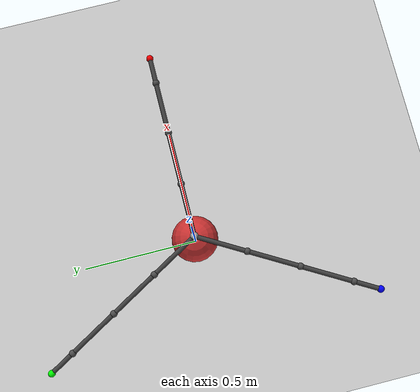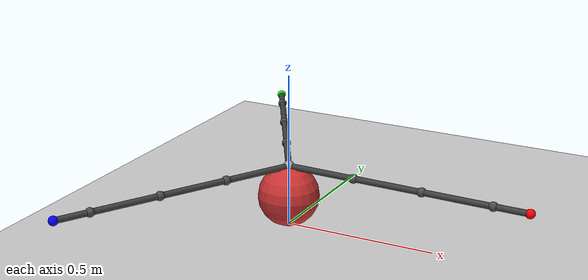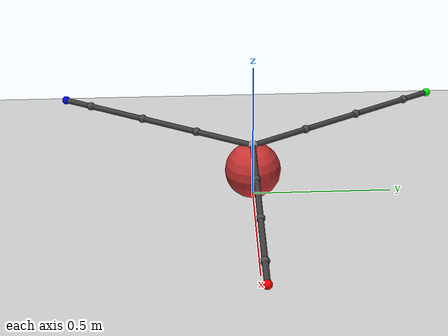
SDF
<sdf version="1.9">
 <world name="multi_uav_slung_load_r0p80">
  <physics name="1ms" type="ode">
   <max_step_size>0.001</max_step_size>
   <real_time_factor>1.0</real_time_factor>
  </physics>
  <plugin filename="gz-sim-physics-system" name="gz::sim::systems::Physics"/>
  <plugin filename="gz-sim-user-commands-system" name="gz::sim::systems::UserCommands"/>
  <plugin filename="gz-sim-scene-broadcaster-system" name="gz::sim::systems::SceneBroadcaster"/>
  <plugin filename="gz-sim-sensors-system" name="gz::sim::systems::Sensors">
   <render_engine>ogre2</render_engine>
  </plugin>
  <plugin filename="gz-sim-imu-system" name="gz::sim::systems::Imu"/>
  <plugin filename="gz-sim-magnetometer-system" name="gz::sim::systems::Magnetometer"/>
  <plugin filename="gz-sim-air-pressure-system" name="gz::sim::systems::AirPressure"/>
  <plugin filename="gz-sim-navsat-system" name="gz::sim::systems::NavSat"/>
  <spherical_coordinates>
   <surface_model>EARTH_WGS84</surface_model>
   <world_frame_orientation>ENU</world_frame_orientation>
   <latitude_deg>47.397742</latitude_deg>
   <longitude_deg>8.545594</longitude_deg>
   <elevation>488.0</elevation>
   <heading_deg>0</heading_deg>
  </spherical_coordinates>
  <light type="directional" name="sun">
   <pose>0 0 10 0 0 0</pose>
   <diffuse>0.8 0.8 0.8 1</diffuse>
   <specular>0.2 0.2 0.2 1</specular>
   <attenuation>
    <range>1000</range>
    <constant>0.9</constant>
    <linear>0.01</linear>
    <quadratic>0.001</quadratic>
   </attenuation>
   <direction>-0.5 0.1 -0.9</direction>
  </light>
  <model name="ground_plane">
   <static>true</static>
   <link name="link">
    <collision name="collision">
     <geometry><plane><normal>0 0 1</normal><size>200 200</size></plane></geometry>
    </collision>
    <visual name="visual">
     <geometry><plane><normal>0 0 1</normal><size>200 200</size></plane></geometry>
     <material>
      <ambient>0.8 0.8 0.8 1</ambient>
      <diffuse>0.8 0.8 0.8 1</diffuse>
      <specular>0.8 0.8 0.8 1</specular>
     </material>
    </visual>
   </link>
  </model>
  <model name="slung_load">
   <link name="payload_link">
    <pose>0 0 0.1 0 0 0</pose>
    <inertial>
     <mass>0.1</mass>
     <inertia><ixx>0.0040</ixx><ixy>0</ixy><ixz>0</ixz><iyy>0.0040</iyy><iyz>0</iyz><izz>0.0040</izz></inertia>
    </inertial>
    <visual name="body_visual">
     <geometry><sphere><radius>0.100</radius></sphere></geometry>
     <material><ambient>0.8 0.2 0.2 1</ambient><diffuse>0.8 0.2 0.2 1</diffuse></material>
    </visual>
    <collision name="body_collision"><geometry><sphere><radius>0.100</radius></sphere></geometry></collision>
   </link>
   <joint name="payload_to_c0_end" type="ball"><parent>payload_link</parent><child>c0_end</child></joint>
   <link name="c0_end">
    <pose>0.0000 0.0000 0.2000 0.0000 0.0000 0.0000</pose>
    <inertial>
     <mass>0.0001</mass>
     <inertia>
      <ixx>6.48e-07</ixx>
      <ixy>0</ixy>
      <ixz>0</ixz>
      <iyy>6.48e-07</iyy>
      <iyz>0</iyz>
      <izz>6.48e-07</izz>
     </inertia>
    </inertial>
    <visual name="v">
     <geometry><sphere><radius>0.018</radius></sphere></geometry>
     <material><ambient>0.6 0.6 0.6 1</ambient><diffuse>0.6 0.6 0.6 1</diffuse></material>
    </visual>
    <collision name="col"><geometry><sphere><radius>0.018</radius></sphere></geometry></collision>
   </link>
   <joint name="c0_end_to_s3c" type="revolute">
    <parent>c0_end</parent>
    <child>c0_s3c</child>
    <axis>
     <xyz>-0.0000 1.0000 0</xyz>
     <limit><lower>-3.14</lower><upper>3.14</upper></limit>
     <dynamics><damping>0.001</damping></dynamics>
    </axis>
   </joint>
   <link name="c0_s3c">
    <pose>0.0000 0.0000 0.2000 0.0000 0.0000 0.0000</pose>
    <inertial>
     <pose>0.1143 0.0000 -0.0015 0.0000 1.5835 0.0000</pose>
     <mass>0.0001</mass>
     <inertia>
      <ixx>6.57e-05</ixx>
      <ixy>0</ixy>
      <ixz>0</ixz>
      <iyy>6.57e-05</iyy>
      <iyz>0</iyz>
      <izz>7.50e-07</izz>
     </inertia>
    </inertial>
    <visual name="v">
     <pose>0.1143 0.0000 -0.0015 0.0000 1.5835 0.0000</pose>
     <geometry><cylinder><radius>0.01</radius><length>0.2286</length></cylinder></geometry>
     <material><ambient>0.25 0.25 0.25 1</ambient><diffuse>0.25 0.25 0.25 1</diffuse></material>
    </visual>
    <collision name="col">
     <pose>0.1143 0.0000 -0.0015 0.0000 1.5835 0.0000</pose>
     <geometry><cylinder><radius>0.01</radius><length>0.2286</length></cylinder></geometry>
    </collision>
   </link>
   <joint name="c0_s3c_to_s3s" type="revolute">
    <parent>c0_s3c</parent>
    <child>c0_s3s</child>
    <axis>
     <xyz>1.0000 0.0000 0</xyz>
     <limit><lower>-3.14</lower><upper>3.14</upper></limit>
     <dynamics><damping>0.001</damping></dynamics>
    </axis>
   </joint>
   <link name="c0_s3s">
    <pose>0.2286 0.0000 0.1971 0.0000 0.0000 0.0000</pose>
    <inertial>
     <mass>0.0001</mass>
     <inertia>
      <ixx>4.50e-07</ixx>
      <ixy>0</ixy>
      <ixz>0</ixz>
      <iyy>4.50e-07</iyy>
      <iyz>0</iyz>
      <izz>4.50e-07</izz>
     </inertia>
    </inertial>
    <visual name="v">
     <geometry><sphere><radius>0.015</radius></sphere></geometry>
     <material><ambient>0.3 0.3 0.3 1</ambient><diffuse>0.3 0.3 0.3 1</diffuse></material>
    </visual>
    <collision name="col"><geometry><sphere><radius>0.015</radius></sphere></geometry></collision>
   </link>
   <joint name="c0_s3s_to_s2c" type="revolute">
    <parent>c0_s3s</parent>
    <child>c0_s2c</child>
    <axis>
     <xyz>-0.0000 1.0000 0</xyz>
     <limit><lower>-3.14</lower><upper>3.14</upper></limit>
     <dynamics><damping>0.001</damping></dynamics>
    </axis>
   </joint>
   <link name="c0_s2c">
    <pose>0.2286 0.0000 0.1971 0.0000 0.0000 0.0000</pose>
    <inertial>
     <pose>0.1143 0.0000 -0.0014 0.0000 1.5830 0.0000</pose>
     <mass>0.0001</mass>
     <inertia>
      <ixx>6.57e-05</ixx>
      <ixy>0</ixy>
      <ixz>0</ixz>
      <iyy>6.57e-05</iyy>
      <iyz>0</iyz>
      <izz>7.50e-07</izz>
     </inertia>
    </inertial>
    <visual name="v">
     <pose>0.1143 0.0000 -0.0014 0.0000 1.5830 0.0000</pose>
     <geometry><cylinder><radius>0.01</radius><length>0.2285</length></cylinder></geometry>
     <material><ambient>0.25 0.25 0.25 1</ambient><diffuse>0.25 0.25 0.25 1</diffuse></material>
    </visual>
    <collision name="col">
     <pose>0.1143 0.0000 -0.0014 0.0000 1.5830 0.0000</pose>
     <geometry><cylinder><radius>0.01</radius><length>0.2285</length></cylinder></geometry>
    </collision>
   </link>
   <joint name="c0_s2c_to_s2s" type="revolute">
    <parent>c0_s2c</parent>
    <child>c0_s2s</child>
    <axis>
     <xyz>1.0000 0.0000 0</xyz>
     <limit><lower>-3.14</lower><upper>3.14</upper></limit>
     <dynamics><damping>0.001</damping></dynamics>
    </axis>
   </joint>
   <link name="c0_s2s">
    <pose>0.4571 0.0000 0.1943 0.0000 0.0000 0.0000</pose>
    <inertial>
     <mass>0.0001</mass>
     <inertia>
      <ixx>4.50e-07</ixx>
      <ixy>0</ixy>
      <ixz>0</ixz>
      <iyy>4.50e-07</iyy>
      <iyz>0</iyz>
      <izz>4.50e-07</izz>
     </inertia>
    </inertial>
    <visual name="v">
     <geometry><sphere><radius>0.015</radius></sphere></geometry>
     <material><ambient>0.3 0.3 0.3 1</ambient><diffuse>0.3 0.3 0.3 1</diffuse></material>
    </visual>
    <collision name="col"><geometry><sphere><radius>0.015</radius></sphere></geometry></collision>
   </link>
   <joint name="c0_s2s_to_s1c" type="revolute">
    <parent>c0_s2s</parent>
    <child>c0_s1c</child>
    <axis>
     <xyz>-0.0000 1.0000 0</xyz>
     <limit><lower>-3.14</lower><upper>3.14</upper></limit>
     <dynamics><damping>0.001</damping></dynamics>
    </axis>
   </joint>
   <link name="c0_s1c">
    <pose>0.4571 0.0000 0.1943 0.0000 0.0000 0.0000</pose>
    <inertial>
     <pose>0.1143 0.0000 -0.0015 0.0000 1.5835 0.0000</pose>
     <mass>0.0001</mass>
     <inertia>
      <ixx>6.57e-05</ixx>
      <ixy>0</ixy>
      <ixz>0</ixz>
      <iyy>6.57e-05</iyy>
      <iyz>0</iyz>
      <izz>7.50e-07</izz>
     </inertia>
    </inertial>
    <visual name="v">
     <pose>0.1143 0.0000 -0.0015 0.0000 1.5835 0.0000</pose>
     <geometry><cylinder><radius>0.01</radius><length>0.2286</length></cylinder></geometry>
     <material><ambient>0.25 0.25 0.25 1</ambient><diffuse>0.25 0.25 0.25 1</diffuse></material>
    </visual>
    <collision name="col">
     <pose>0.1143 0.0000 -0.0015 0.0000 1.5835 0.0000</pose>
     <geometry><cylinder><radius>0.01</radius><length>0.2286</length></cylinder></geometry>
    </collision>
   </link>
   <joint name="c0_s1c_to_s1s" type="revolute">
    <parent>c0_s1c</parent>
    <child>c0_s1s</child>
    <axis>
     <xyz>1.0000 0.0000 0</xyz>
     <limit><lower>-3.14</lower><upper>3.14</upper></limit>
     <dynamics><damping>0.001</damping></dynamics>
    </axis>
   </joint>
   <link name="c0_s1s">
    <pose>0.6857 0.0000 0.1914 0.0000 0.0000 0.0000</pose>
    <inertial>
     <mass>0.0001</mass>
     <inertia>
      <ixx>4.50e-07</ixx>
      <ixy>0</ixy>
      <ixz>0</ixz>
      <iyy>4.50e-07</iyy>
      <iyz>0</iyz>
      <izz>4.50e-07</izz>
     </inertia>
    </inertial>
    <visual name="v">
     <geometry><sphere><radius>0.015</radius></sphere></geometry>
     <material><ambient>0.3 0.3 0.3 1</ambient><diffuse>0.3 0.3 0.3 1</diffuse></material>
    </visual>
    <collision name="col"><geometry><sphere><radius>0.015</radius></sphere></geometry></collision>
    <visual name="rod_to_hook">
     <pose>0.0572 0.0000 -0.0007 0.0000 1.5830 0.0000</pose>
     <geometry><cylinder><radius>0.01</radius><length>0.1143</length></cylinder></geometry>
     <material><ambient>0.25 0.25 0.25 1</ambient><diffuse>0.25 0.25 0.25 1</diffuse></material>
    </visual>
    <collision name="rod_to_hook_col">
     <pose>0.0572 0.0000 -0.0007 0.0000 1.5830 0.0000</pose>
     <geometry><cylinder><radius>0.01</radius><length>0.1143</length></cylinder></geometry>
    </collision>
   </link>
   <joint name="c0_s1s_to_hook" type="revolute">
    <parent>c0_s1s</parent>
    <child>c0_hook</child>
    <axis>
     <xyz>-0.0000 1.0000 0</xyz>
     <limit><lower>-3.14</lower><upper>3.14</upper></limit>
     <dynamics><damping>0.001</damping></dynamics>
    </axis>
   </joint>
   <link name="c0_hook">
    <pose>0.8000 0.0000 0.1900 0.0000 0.0000 0.0000</pose>
    <inertial>
     <mass>0.0001</mass>
     <inertia>
      <ixx>4.50e-07</ixx>
      <ixy>0</ixy>
      <ixz>0</ixz>
      <iyy>4.50e-07</iyy>
      <iyz>0</iyz>
      <izz>4.50e-07</izz>
     </inertia>
    </inertial>
    <visual name="v">
     <geometry><sphere><radius>0.015</radius></sphere></geometry>
     <material><ambient>1 0 0 1</ambient><diffuse>1 0 0 1</diffuse></material>
    </visual>
    <collision name="col"><geometry><sphere><radius>0.015</radius></sphere></geometry></collision>
   </link>
   <joint name="payload_to_c1_end" type="ball"><parent>payload_link</parent><child>c1_end</child></joint>
   <link name="c1_end">
    <pose>0.0000 0.0000 0.2000 0.0000 0.0000 0.0000</pose>
    <inertial>
     <mass>0.0001</mass>
     <inertia>
      <ixx>6.48e-07</ixx>
      <ixy>0</ixy>
      <ixz>0</ixz>
      <iyy>6.48e-07</iyy>
      <iyz>0</iyz>
      <izz>6.48e-07</izz>
     </inertia>
    </inertial>
    <visual name="v">
     <geometry><sphere><radius>0.018</radius></sphere></geometry>
     <material><ambient>0.6 0.6 0.6 1</ambient><diffuse>0.6 0.6 0.6 1</diffuse></material>
    </visual>
    <collision name="col"><geometry><sphere><radius>0.018</radius></sphere></geometry></collision>
   </link>
   <joint name="c1_end_to_s3c" type="revolute">
    <parent>c1_end</parent>
    <child>c1_s3c</child>
    <axis>
     <xyz>-0.8660 -0.5000 0</xyz>
     <limit><lower>-3.14</lower><upper>3.14</upper></limit>
     <dynamics><damping>0.001</damping></dynamics>
    </axis>
   </joint>
   <link name="c1_s3c">
    <pose>0.0000 0.0000 0.2000 0.0000 0.0000 0.0000</pose>
    <inertial>
     <pose>-0.0571 0.0989 -0.0015 0.0000 1.5835 2.0946</pose>
     <mass>0.0001</mass>
     <inertia>
      <ixx>6.57e-05</ixx>
      <ixy>0</ixy>
      <ixz>0</ixz>
      <iyy>6.57e-05</iyy>
      <iyz>0</iyz>
      <izz>7.50e-07</izz>
     </inertia>
    </inertial>
    <visual name="v">
     <pose>-0.0571 0.0989 -0.0015 0.0000 1.5835 2.0946</pose>
     <geometry><cylinder><radius>0.01</radius><length>0.2286</length></cylinder></geometry>
     <material><ambient>0.25 0.25 0.25 1</ambient><diffuse>0.25 0.25 0.25 1</diffuse></material>
    </visual>
    <collision name="col">
     <pose>-0.0571 0.0989 -0.0015 0.0000 1.5835 2.0946</pose>
     <geometry><cylinder><radius>0.01</radius><length>0.2286</length></cylinder></geometry>
    </collision>
   </link>
   <joint name="c1_s3c_to_s3s" type="revolute">
    <parent>c1_s3c</parent>
    <child>c1_s3s</child>
    <axis>
     <xyz>-0.5000 0.8660 0</xyz>
     <limit><lower>-3.14</lower><upper>3.14</upper></limit>
     <dynamics><damping>0.001</damping></dynamics>
    </axis>
   </joint>
   <link name="c1_s3s">
    <pose>-0.1143 0.1979 0.1971 0.0000 0.0000 0.0000</pose>
    <inertial>
     <mass>0.0001</mass>
     <inertia>
      <ixx>4.50e-07</ixx>
      <ixy>0</ixy>
      <ixz>0</ixz>
      <iyy>4.50e-07</iyy>
      <iyz>0</iyz>
      <izz>4.50e-07</izz>
     </inertia>
    </inertial>
    <visual name="v">
     <geometry><sphere><radius>0.015</radius></sphere></geometry>
     <material><ambient>0.3 0.3 0.3 1</ambient><diffuse>0.3 0.3 0.3 1</diffuse></material>
    </visual>
    <collision name="col"><geometry><sphere><radius>0.015</radius></sphere></geometry></collision>
   </link>
   <joint name="c1_s3s_to_s2c" type="revolute">
    <parent>c1_s3s</parent>
    <child>c1_s2c</child>
    <axis>
     <xyz>-0.8660 -0.5000 0</xyz>
     <limit><lower>-3.14</lower><upper>3.14</upper></limit>
     <dynamics><damping>0.001</damping></dynamics>
    </axis>
   </joint>
   <link name="c1_s2c">
    <pose>-0.1143 0.1979 0.1971 0.0000 0.0000 0.0000</pose>
    <inertial>
     <pose>-0.0571 0.0990 -0.0014 0.0000 1.5830 2.0943</pose>
     <mass>0.0001</mass>
     <inertia>
      <ixx>6.57e-05</ixx>
      <ixy>0</ixy>
      <ixz>0</ixz>
      <iyy>6.57e-05</iyy>
      <iyz>0</iyz>
      <izz>7.50e-07</izz>
     </inertia>
    </inertial>
    <visual name="v">
     <pose>-0.0571 0.0990 -0.0014 0.0000 1.5830 2.0943</pose>
     <geometry><cylinder><radius>0.01</radius><length>0.2286</length></cylinder></geometry>
     <material><ambient>0.25 0.25 0.25 1</ambient><diffuse>0.25 0.25 0.25 1</diffuse></material>
    </visual>
    <collision name="col">
     <pose>-0.0571 0.0990 -0.0014 0.0000 1.5830 2.0943</pose>
     <geometry><cylinder><radius>0.01</radius><length>0.2286</length></cylinder></geometry>
    </collision>
   </link>
   <joint name="c1_s2c_to_s2s" type="revolute">
    <parent>c1_s2c</parent>
    <child>c1_s2s</child>
    <axis>
     <xyz>-0.5000 0.8660 0</xyz>
     <limit><lower>-3.14</lower><upper>3.14</upper></limit>
     <dynamics><damping>0.001</damping></dynamics>
    </axis>
   </joint>
   <link name="c1_s2s">
    <pose>-0.2286 0.3959 0.1943 0.0000 0.0000 0.0000</pose>
    <inertial>
     <mass>0.0001</mass>
     <inertia>
      <ixx>4.50e-07</ixx>
      <ixy>0</ixy>
      <ixz>0</ixz>
      <iyy>4.50e-07</iyy>
      <iyz>0</iyz>
      <izz>4.50e-07</izz>
     </inertia>
    </inertial>
    <visual name="v">
     <geometry><sphere><radius>0.015</radius></sphere></geometry>
     <material><ambient>0.3 0.3 0.3 1</ambient><diffuse>0.3 0.3 0.3 1</diffuse></material>
    </visual>
    <collision name="col"><geometry><sphere><radius>0.015</radius></sphere></geometry></collision>
   </link>
   <joint name="c1_s2s_to_s1c" type="revolute">
    <parent>c1_s2s</parent>
    <child>c1_s1c</child>
    <axis>
     <xyz>-0.8660 -0.5000 0</xyz>
     <limit><lower>-3.14</lower><upper>3.14</upper></limit>
     <dynamics><damping>0.001</damping></dynamics>
    </axis>
   </joint>
   <link name="c1_s1c">
    <pose>-0.2286 0.3959 0.1943 0.0000 0.0000 0.0000</pose>
    <inertial>
     <pose>-0.0571 0.0990 -0.0015 0.0000 1.5835 2.0946</pose>
     <mass>0.0001</mass>
     <inertia>
      <ixx>6.57e-05</ixx>
      <ixy>0</ixy>
      <ixz>0</ixz>
      <iyy>6.57e-05</iyy>
      <iyz>0</iyz>
      <izz>7.50e-07</izz>
     </inertia>
    </inertial>
    <visual name="v">
     <pose>-0.0571 0.0990 -0.0015 0.0000 1.5835 2.0946</pose>
     <geometry><cylinder><radius>0.01</radius><length>0.2286</length></cylinder></geometry>
     <material><ambient>0.25 0.25 0.25 1</ambient><diffuse>0.25 0.25 0.25 1</diffuse></material>
    </visual>
    <collision name="col">
     <pose>-0.0571 0.0990 -0.0015 0.0000 1.5835 2.0946</pose>
     <geometry><cylinder><radius>0.01</radius><length>0.2286</length></cylinder></geometry>
    </collision>
   </link>
   <joint name="c1_s1c_to_s1s" type="revolute">
    <parent>c1_s1c</parent>
    <child>c1_s1s</child>
    <axis>
     <xyz>-0.5000 0.8660 0</xyz>
     <limit><lower>-3.14</lower><upper>3.14</upper></limit>
     <dynamics><damping>0.001</damping></dynamics>
    </axis>
   </joint>
   <link name="c1_s1s">
    <pose>-0.3429 0.5938 0.1914 0.0000 0.0000 0.0000</pose>
    <inertial>
     <mass>0.0001</mass>
     <inertia>
      <ixx>4.50e-07</ixx>
      <ixy>0</ixy>
      <ixz>0</ixz>
      <iyy>4.50e-07</iyy>
      <iyz>0</iyz>
      <izz>4.50e-07</izz>
     </inertia>
    </inertial>
    <visual name="v">
     <geometry><sphere><radius>0.015</radius></sphere></geometry>
     <material><ambient>0.3 0.3 0.3 1</ambient><diffuse>0.3 0.3 0.3 1</diffuse></material>
    </visual>
    <collision name="col"><geometry><sphere><radius>0.015</radius></sphere></geometry></collision>
    <visual name="rod_to_hook">
     <pose>-0.0286 0.0495 -0.0007 0.0000 1.5830 2.0940</pose>
     <geometry><cylinder><radius>0.01</radius><length>0.1143</length></cylinder></geometry>
     <material><ambient>0.25 0.25 0.25 1</ambient><diffuse>0.25 0.25 0.25 1</diffuse></material>
    </visual>
    <collision name="rod_to_hook_col">
     <pose>-0.0286 0.0495 -0.0007 0.0000 1.5830 2.0940</pose>
     <geometry><cylinder><radius>0.01</radius><length>0.1143</length></cylinder></geometry>
    </collision>
   </link>
   <joint name="c1_s1s_to_hook" type="revolute">
    <parent>c1_s1s</parent>
    <child>c1_hook</child>
    <axis>
     <xyz>-0.8660 -0.5000 0</xyz>
     <limit><lower>-3.14</lower><upper>3.14</upper></limit>
     <dynamics><damping>0.001</damping></dynamics>
    </axis>
   </joint>
   <link name="c1_hook">
    <pose>-0.4000 0.6928 0.1900 0.0000 0.0000 0.0000</pose>
    <inertial>
     <mass>0.0001</mass>
     <inertia>
      <ixx>4.50e-07</ixx>
      <ixy>0</ixy>
      <ixz>0</ixz>
      <iyy>4.50e-07</iyy>
      <iyz>0</iyz>
      <izz>4.50e-07</izz>
     </inertia>
    </inertial>
    <visual name="v">
     <geometry><sphere><radius>0.015</radius></sphere></geometry>
     <material><ambient>0 1 0 1</ambient><diffuse>0 1 0 1</diffuse></material>
    </visual>
    <collision name="col"><geometry><sphere><radius>0.015</radius></sphere></geometry></collision>
   </link>
   <joint name="payload_to_c2_end" type="ball"><parent>payload_link</parent><child>c2_end</child></joint>
   <link name="c2_end">
    <pose>0.0000 0.0000 0.2000 0.0000 0.0000 0.0000</pose>
    <inertial>
     <mass>0.0001</mass>
     <inertia>
      <ixx>6.48e-07</ixx>
      <ixy>0</ixy>
      <ixz>0</ixz>
      <iyy>6.48e-07</iyy>
      <iyz>0</iyz>
      <izz>6.48e-07</izz>
     </inertia>
    </inertial>
    <visual name="v">
     <geometry><sphere><radius>0.018</radius></sphere></geometry>
     <material><ambient>0.6 0.6 0.6 1</ambient><diffuse>0.6 0.6 0.6 1</diffuse></material>
    </visual>
    <collision name="col"><geometry><sphere><radius>0.018</radius></sphere></geometry></collision>
   </link>
   <joint name="c2_end_to_s3c" type="revolute">
    <parent>c2_end</parent>
    <child>c2_s3c</child>
    <axis>
     <xyz>0.8660 -0.5000 0</xyz>
     <limit><lower>-3.14</lower><upper>3.14</upper></limit>
     <dynamics><damping>0.001</damping></dynamics>
    </axis>
   </joint>
   <link name="c2_s3c">
    <pose>0.0000 0.0000 0.2000 0.0000 0.0000 0.0000</pose>
    <inertial>
     <pose>-0.0571 -0.0989 -0.0015 0.0000 1.5835 -2.0946</pose>
     <mass>0.0001</mass>
     <inertia>
      <ixx>6.57e-05</ixx>
      <ixy>0</ixy>
      <ixz>0</ixz>
      <iyy>6.57e-05</iyy>
      <iyz>0</iyz>
      <izz>7.50e-07</izz>
     </inertia>
    </inertial>
    <visual name="v">
     <pose>-0.0571 -0.0989 -0.0015 0.0000 1.5835 -2.0946</pose>
     <geometry><cylinder><radius>0.01</radius><length>0.2286</length></cylinder></geometry>
     <material><ambient>0.25 0.25 0.25 1</ambient><diffuse>0.25 0.25 0.25 1</diffuse></material>
    </visual>
    <collision name="col">
     <pose>-0.0571 -0.0989 -0.0015 0.0000 1.5835 -2.0946</pose>
     <geometry><cylinder><radius>0.01</radius><length>0.2286</length></cylinder></geometry>
    </collision>
   </link>
   <joint name="c2_s3c_to_s3s" type="revolute">
    <parent>c2_s3c</parent>
    <child>c2_s3s</child>
    <axis>
     <xyz>-0.5000 -0.8660 0</xyz>
     <limit><lower>-3.14</lower><upper>3.14</upper></limit>
     <dynamics><damping>0.001</damping></dynamics>
    </axis>
   </joint>
   <link name="c2_s3s">
    <pose>-0.1143 -0.1979 0.1971 0.0000 0.0000 0.0000</pose>
    <inertial>
     <mass>0.0001</mass>
     <inertia>
      <ixx>4.50e-07</ixx>
      <ixy>0</ixy>
      <ixz>0</ixz>
      <iyy>4.50e-07</iyy>
      <iyz>0</iyz>
      <izz>4.50e-07</izz>
     </inertia>
    </inertial>
    <visual name="v">
     <geometry><sphere><radius>0.015</radius></sphere></geometry>
     <material><ambient>0.3 0.3 0.3 1</ambient><diffuse>0.3 0.3 0.3 1</diffuse></material>
    </visual>
    <collision name="col"><geometry><sphere><radius>0.015</radius></sphere></geometry></collision>
   </link>
   <joint name="c2_s3s_to_s2c" type="revolute">
    <parent>c2_s3s</parent>
    <child>c2_s2c</child>
    <axis>
     <xyz>0.8660 -0.5000 0</xyz>
     <limit><lower>-3.14</lower><upper>3.14</upper></limit>
     <dynamics><damping>0.001</damping></dynamics>
    </axis>
   </joint>
   <link name="c2_s2c">
    <pose>-0.1143 -0.1979 0.1971 0.0000 0.0000 0.0000</pose>
    <inertial>
     <pose>-0.0571 -0.0990 -0.0014 0.0000 1.5830 -2.0943</pose>
     <mass>0.0001</mass>
     <inertia>
      <ixx>6.57e-05</ixx>
      <ixy>0</ixy>
      <ixz>0</ixz>
      <iyy>6.57e-05</iyy>
      <iyz>0</iyz>
      <izz>7.50e-07</izz>
     </inertia>
    </inertial>
    <visual name="v">
     <pose>-0.0571 -0.0990 -0.0014 0.0000 1.5830 -2.0943</pose>
     <geometry><cylinder><radius>0.01</radius><length>0.2286</length></cylinder></geometry>
     <material><ambient>0.25 0.25 0.25 1</ambient><diffuse>0.25 0.25 0.25 1</diffuse></material>
    </visual>
    <collision name="col">
     <pose>-0.0571 -0.0990 -0.0014 0.0000 1.5830 -2.0943</pose>
     <geometry><cylinder><radius>0.01</radius><length>0.2286</length></cylinder></geometry>
    </collision>
   </link>
   <joint name="c2_s2c_to_s2s" type="revolute">
    <parent>c2_s2c</parent>
    <child>c2_s2s</child>
    <axis>
     <xyz>-0.5000 -0.8660 0</xyz>
     <limit><lower>-3.14</lower><upper>3.14</upper></limit>
     <dynamics><damping>0.001</damping></dynamics>
    </axis>
   </joint>
   <link name="c2_s2s">
    <pose>-0.2286 -0.3959 0.1943 0.0000 0.0000 0.0000</pose>
    <inertial>
     <mass>0.0001</mass>
     <inertia>
      <ixx>4.50e-07</ixx>
      <ixy>0</ixy>
      <ixz>0</ixz>
      <iyy>4.50e-07</iyy>
      <iyz>0</iyz>
      <izz>4.50e-07</izz>
     </inertia>
    </inertial>
    <visual name="v">
     <geometry><sphere><radius>0.015</radius></sphere></geometry>
     <material><ambient>0.3 0.3 0.3 1</ambient><diffuse>0.3 0.3 0.3 1</diffuse></material>
    </visual>
    <collision name="col"><geometry><sphere><radius>0.015</radius></sphere></geometry></collision>
   </link>
   <joint name="c2_s2s_to_s1c" type="revolute">
    <parent>c2_s2s</parent>
    <child>c2_s1c</child>
    <axis>
     <xyz>0.8660 -0.5000 0</xyz>
     <limit><lower>-3.14</lower><upper>3.14</upper></limit>
     <dynamics><damping>0.001</damping></dynamics>
    </axis>
   </joint>
   <link name="c2_s1c">
    <pose>-0.2286 -0.3959 0.1943 0.0000 0.0000 0.0000</pose>
    <inertial>
     <pose>-0.0571 -0.0990 -0.0015 0.0000 1.5835 -2.0946</pose>
     <mass>0.0001</mass>
     <inertia>
      <ixx>6.57e-05</ixx>
      <ixy>0</ixy>
      <ixz>0</ixz>
      <iyy>6.57e-05</iyy>
      <iyz>0</iyz>
      <izz>7.50e-07</izz>
     </inertia>
    </inertial>
    <visual name="v">
     <pose>-0.0571 -0.0990 -0.0015 0.0000 1.5835 -2.0946</pose>
     <geometry><cylinder><radius>0.01</radius><length>0.2286</length></cylinder></geometry>
     <material><ambient>0.25 0.25 0.25 1</ambient><diffuse>0.25 0.25 0.25 1</diffuse></material>
    </visual>
    <collision name="col">
     <pose>-0.0571 -0.0990 -0.0015 0.0000 1.5835 -2.0946</pose>
     <geometry><cylinder><radius>0.01</radius><length>0.2286</length></cylinder></geometry>
    </collision>
   </link>
   <joint name="c2_s1c_to_s1s" type="revolute">
    <parent>c2_s1c</parent>
    <child>c2_s1s</child>
    <axis>
     <xyz>-0.5000 -0.8660 0</xyz>
     <limit><lower>-3.14</lower><upper>3.14</upper></limit>
     <dynamics><damping>0.001</damping></dynamics>
    </axis>
   </joint>
   <link name="c2_s1s">
    <pose>-0.3429 -0.5938 0.1914 0.0000 0.0000 0.0000</pose>
    <inertial>
     <mass>0.0001</mass>
     <inertia>
      <ixx>4.50e-07</ixx>
      <ixy>0</ixy>
      <ixz>0</ixz>
      <iyy>4.50e-07</iyy>
      <iyz>0</iyz>
      <izz>4.50e-07</izz>
     </inertia>
    </inertial>
    <visual name="v">
     <geometry><sphere><radius>0.015</radius></sphere></geometry>
     <material><ambient>0.3 0.3 0.3 1</ambient><diffuse>0.3 0.3 0.3 1</diffuse></material>
    </visual>
    <collision name="col"><geometry><sphere><radius>0.015</radius></sphere></geometry></collision>
    <visual name="rod_to_hook">
     <pose>-0.0286 -0.0495 -0.0007 0.0000 1.5830 -2.0940</pose>
     <geometry><cylinder><radius>0.01</radius><length>0.1143</length></cylinder></geometry>
     <material><ambient>0.25 0.25 0.25 1</ambient><diffuse>0.25 0.25 0.25 1</diffuse></material>
    </visual>
    <collision name="rod_to_hook_col">
     <pose>-0.0286 -0.0495 -0.0007 0.0000 1.5830 -2.0940</pose>
     <geometry><cylinder><radius>0.01</radius><length>0.1143</length></cylinder></geometry>
    </collision>
   </link>
   <joint name="c2_s1s_to_hook" type="revolute">
    <parent>c2_s1s</parent>
    <child>c2_hook</child>
    <axis>
     <xyz>0.8660 -0.5000 0</xyz>
     <limit><lower>-3.14</lower><upper>3.14</upper></limit>
     <dynamics><damping>0.001</damping></dynamics>
    </axis>
   </joint>
   <link name="c2_hook">
    <pose>-0.4000 -0.6928 0.1900 0.0000 0.0000 0.0000</pose>
    <inertial>
     <mass>0.0001</mass>
     <inertia>
      <ixx>4.50e-07</ixx>
      <ixy>0</ixy>
      <ixz>0</ixz>
      <iyy>4.50e-07</iyy>
      <iyz>0</iyz>
      <izz>4.50e-07</izz>
     </inertia>
    </inertial>
    <visual name="v">
     <geometry><sphere><radius>0.015</radius></sphere></geometry>
     <material><ambient>0 0 1 1</ambient><diffuse>0 0 1 1</diffuse></material>
    </visual>
    <collision name="col"><geometry><sphere><radius>0.015</radius></sphere></geometry></collision>
   </link>
  </model>
  <joint name="c0_hook_to_uav0" type="ball">
   <parent>slung_load::c0_hook</parent>
   <child>x500_0::base_link</child>
  </joint>
  <joint name="c1_hook_to_uav1" type="ball">
   <parent>slung_load::c1_hook</parent>
   <child>x500_1::base_link</child>
  </joint>
  <joint name="c2_hook_to_uav2" type="ball">
   <parent>slung_load::c2_hook</parent>
   <child>x500_2::base_link</child>
  </joint>
 </world>
</sdf>
